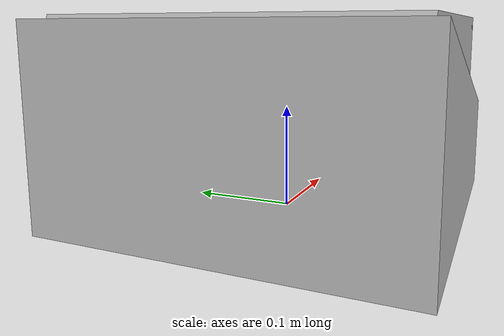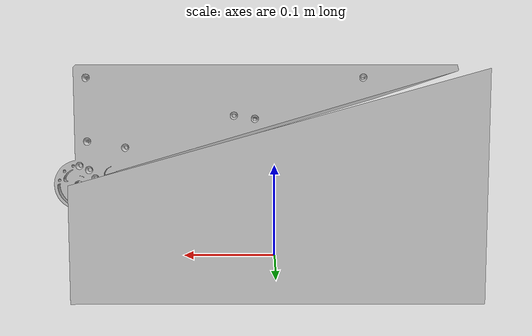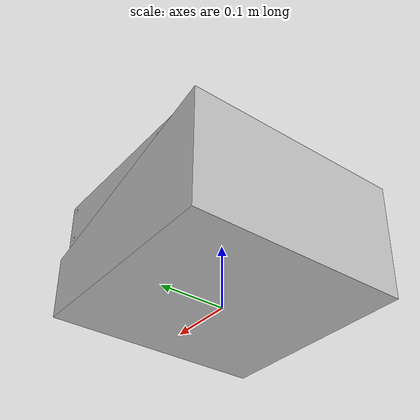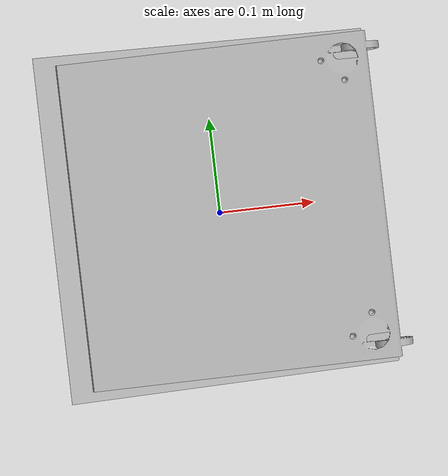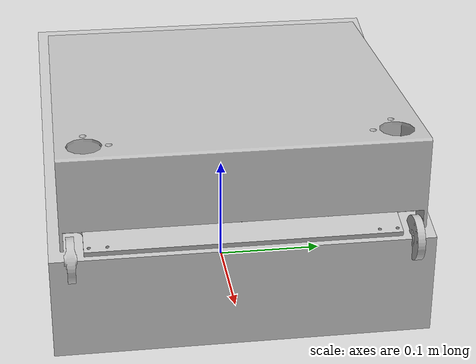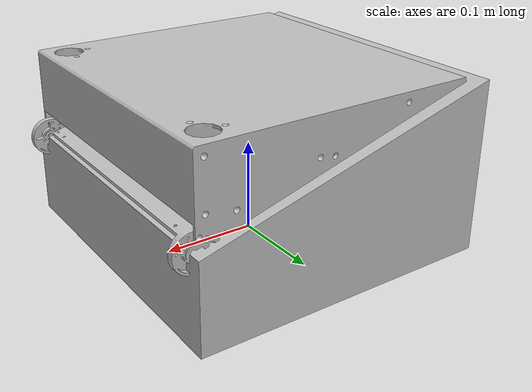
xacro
<?xml version="1.0" encoding="utf-8"?>
<robot name="slope"
  xmlns:xacro="http://ros.org/wiki/xacro">
  <link name="slope_base">
    <inertial>
      <origin xyz="0 -0.16 0" rpy="0 0 0" />
      <mass value="1" />
      <inertia ixx="0.013609" ixy="5.3826E-06" ixz="1.1115E-05" iyy="0.022909" iyz="-0.0034102" izz="0.013642" />
    </inertial>
    <visual>
      <origin xyz="0 0 0" rpy="0 0 0" />
      <geometry>
        <mesh filename="package://slope/meshes/slope_base.STL" />
      </geometry>
      <material name="">
        <color rgba="0.75294 0.75294 0.75294 1" />
      </material>
    </visual>
    <collision>
      <origin xyz="0 -0.16 0" rpy="0 0 1.57" />
      <geometry>
        <mesh filename="package://slope/meshes/slope_base_collision.STL" />
      </geometry>
    </collision>
  </link>
  <link name="slope_end">
    <inertial>
      <origin xyz="0 0 0" rpy="0 0 0" />
      <mass value="0.1" />
      <inertia ixx="0.01" ixy="0" ixz="0" iyy="0.01" iyz="0.0019145" izz="0.01" />
    </inertial>
    <visual>
      <origin xyz="0.02 0 0.005" rpy="0.085 0 0" />
      <geometry>
        <mesh filename="package://slope/meshes/slope_end.STL" />
      </geometry>
      <material name="">
        <color rgba="0.75294 0.75294 0.75294 1" />
      </material>
    </visual>
    <collision>
      <origin xyz="0 0.16 -0.0925" rpy="0 0 1.57" />
      <geometry>
        <mesh filename="package://slope/meshes/slope_end_collision.STL" />
      </geometry>
    </collision>
  </link>
  <joint name="rot" type="revolute">
    <origin xyz="0 0 0.095" rpy="3.14 0 0" />
    <parent link="slope_base" />
    <child link="slope_end" />
    <limit upper="0" lower="-3.14" velocity="0.3" effort="10"/>
    <axis xyz="1 0 0" />
  </joint>

  <transmission name="rot_tran">
    <type>transmission_interface/SimpleTransmission</type>
    <joint name="rot">
      <hardwareInterface>hardware_interface/EffortJointInterface</hardwareInterface>
    </joint>
    <actuator name="rot_motor">
      <hardwareInterface>hardware_interface/EffortJointInterface</hardwareInterface>
      <mechanicalReduction>1</mechanicalReduction>
    </actuator>
  </transmission>

  <link name="base_link">
  </link>
  <joint name="floor_joint" type="fixed">
    <origin xyz="0.16 0 0" rpy="0 0 -1.57"/>
    <parent link="base_link"/>
    <child link="slope_base" />
  </joint>
  <!-- Bring in simulation data for Gazebo. -->
  <xacro:include filename="$(find slope)/urdf/slope.gazebo" />

</robot>
